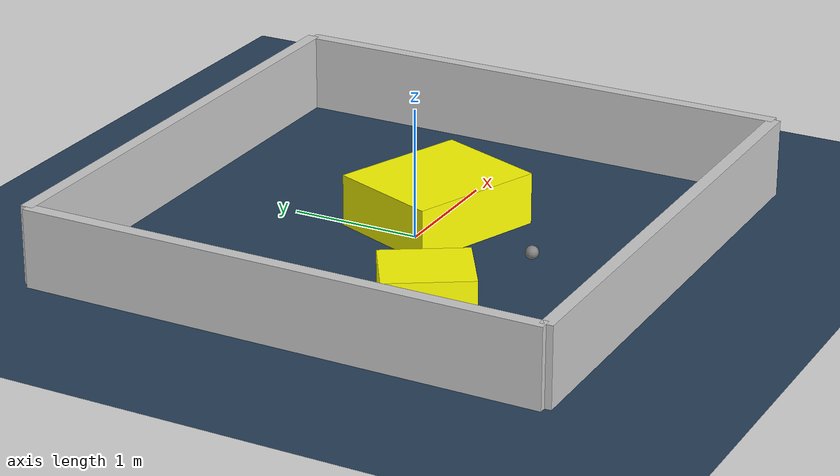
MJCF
<?xml version="1.0" ?>
<mujoco model="generated_environment">
  <option timestep="0.01" integrator="RK4" cone="elliptic"/>
  <default>
    <geom density="1"/>
  </default>
  <asset>
    <texture builtin="gradient" height="3072" rgb1="0.3 0.5 0.7" rgb2="0 0 0" type="skybox" width="512"/>
    <texture builtin="checker" height="300" mark="edge" markrgb="0.8 0.8 0.8" name="groundplane" rgb1="0.2 0.3 0.4" rgb2="0.1 0.2 0.3" type="2d" width="300"/>
    <material name="groundplane" reflectance="0.2" texrepeat="5 5" texture="groundplane" texuniform="true"/>
    <material name="robot" rgba="0.0 1.0 0.0 1"/>
  </asset>
  <worldbody>
    <light dir="0 0 -1" directional="true" pos="0 0 1.5"/>
    <geom condim="4" friction="1.0 0.005 0.001" material="groundplane" name="floor" size="0 0 0.05" type="plane"/>
    <body name="walls">
      <geom name="wall_1" condim="4" pos="-2.0 0.0 0.3" rgba="0.800000011920929 0.800000011920929 0.800000011920929 1.0" size="0.05 2.0 0.3" type="box"/>
      <geom name="wall_2" condim="4" pos="2.0 0.0 0.3" rgba="0.800000011920929 0.800000011920929 0.800000011920929 1.0" size="0.05 2.0 0.3" type="box"/>
      <geom name="wall_3" condim="4" pos="0.0 -2.0 0.3" rgba="0.800000011920929 0.800000011920929 0.800000011920929 1.0" size="2.0 0.05 0.3" type="box"/>
      <geom name="wall_4" condim="4" pos="0.0 2.0 0.3" rgba="0.800000011920929 0.800000011920929 0.800000011920929 1.0" size="2.0 0.05 0.3" type="box"/>
    </body>
    <body name="robot">
      <joint name="joint_x" type="slide" pos="0 0 0" axis="1 0 0"/>
      <joint name="joint_y" type="slide" pos="0 0 0" axis="0 1 0"/>
      <geom name="robot" type="sphere" pos="-0.24165047056805378 -1.0634829817414073 0.2" size="0.05" mass="5." friction="1.0 0.005 0.0001" condim="4"/>
      <site name="sensor_ball"/>
    </body>
    <body name="obstacle_1_movable">
      <geom name="obstacle_1_movable" condim="4" pos="-1.173630527293867 -0.7122753315663859 0.2" euler="0 0 211.44930330778695" friction="1.0 0.005 0.001" rgba="1 1 0 1" size="0.277690247635565 0.3303707538890736 0.2" type="box" mass="0.1"/>
      <joint type="free"/>
    </body>
    <body name="obstacle_2_movable">
      <geom name="obstacle_2_movable" condim="4" pos="0.2915662947802291 -0.032458684909713265 0.2" euler="0 0 68.97354500544016" friction="1.0 0.005 0.001" rgba="1 1 0 1" size="0.44331806360412873 0.5365043715065699 0.2" type="box" mass="0.1"/>
      <joint type="free"/>
    </body>
  </worldbody>
  <actuator>
    <motor name="actuator_x" joint="joint_x" gear="1" ctrlrange="-1 1"/>
    <motor name="actuator_y" joint="joint_y" gear="1" ctrlrange="-1 1"/>
  </actuator>
</mujoco>
